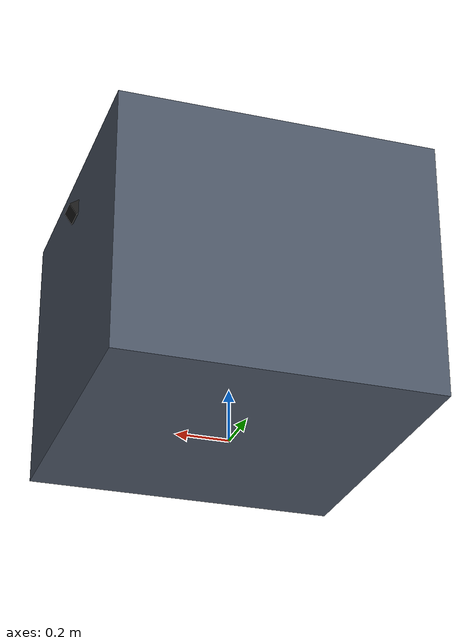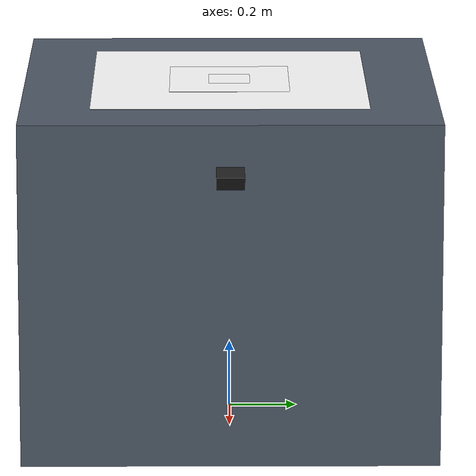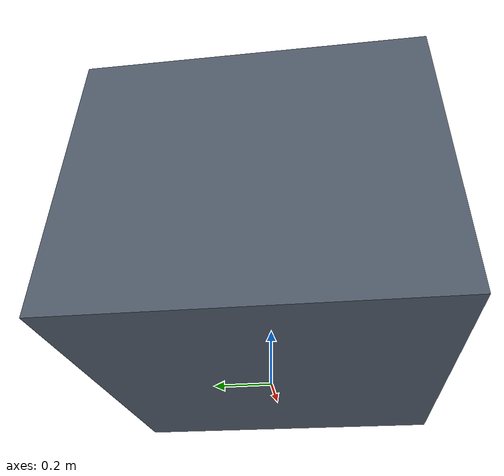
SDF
<?xml version="1.0"?>
<sdf version="1.9">
  <model name="aruco_platform">
    <static>false</static>
    <link name="link">
      <gravity>false</gravity>
      <inertial>
        <mass>100.0</mass>
        <inertia>
          <ixx>20.0</ixx><iyy>20.0</iyy><izz>24.0</izz>
          <ixy>0</ixy><ixz>0</ixz><iyz>0</iyz>
        </inertia>
      </inertial>

      <collision name="body_col">
        <pose>0 0 0.5 0 0 0</pose>
        <geometry><box><size>1.2 1.2 1.0</size></box></geometry>
        <surface>
          <friction>
            <ode><mu>1.0</mu><mu2>1.0</mu2></ode>
          </friction>
        </surface>
      </collision>
      <visual name="body_vis">
        <pose>0 0 0.5 0 0 0</pose>
        <geometry><box><size>1.2 1.2 1.0</size></box></geometry>
        <material>
          <ambient>0.25 0.28 0.32 1</ambient>
          <diffuse>0.30 0.34 0.40 1</diffuse>
          <specular>0.1 0.1 0.1 1</specular>
        </material>
      </visual>

      <visual name="marker_vis_large">
        <pose>0 0 1.001 0 0 0</pose>
        <geometry>
          <plane>
            <normal>0 0 1</normal>
            <size>0.8 0.8</size>
          </plane>
        </geometry>
        <material>
          <ambient>1 1 1 1</ambient>
          <diffuse>1 1 1 1</diffuse>
          <specular>0 0 0 1</specular>
          <pbr>
            <metal>
              <albedo_map>model://aruco_platform/materials/textures/aruco_0.png</albedo_map>
              <metalness>0.0</metalness>
              <roughness>1.0</roughness>
            </metal>
          </pbr>
        </material>
      </visual>
      <visual name="marker_vis_medium">
        <pose>0 0 1.002 0 0 0</pose>
        <geometry>
          <plane>
            <normal>0 0 1</normal>
            <size>0.35 0.35</size>
          </plane>
        </geometry>
        <material>
          <ambient>1 1 1 1</ambient>
          <diffuse>1 1 1 1</diffuse>
          <specular>0 0 0 1</specular>
          <pbr>
            <metal>
              <albedo_map>model://aruco_platform/materials/textures/aruco_1.png</albedo_map>
              <metalness>0.0</metalness>
              <roughness>1.0</roughness>
            </metal>
          </pbr>
        </material>
      </visual>
      <visual name="marker_vis_small">
        <pose>0 0 1.003 0 0 0</pose>
        <geometry>
          <plane>
            <normal>0 0 1</normal>
            <size>0.12 0.12</size>
          </plane>
        </geometry>
        <material>
          <ambient>1 1 1 1</ambient>
          <diffuse>1 1 1 1</diffuse>
          <specular>0 0 0 1</specular>
          <pbr>
            <metal>
              <albedo_map>model://aruco_platform/materials/textures/aruco_2.png</albedo_map>
              <metalness>0.0</metalness>
              <roughness>1.0</roughness>
            </metal>
          </pbr>
        </material>
      </visual>

      <!-- Forward-looking camera for TRACK-LINE following.                -->
      <!-- Mounted at the FRONT-TOP of the box (box front face = x+0.6,    -->
      <!-- top = z+1.0), pitched ~35 deg down so the optical +X axis looks -->
      <!-- forward-and-down at the white guide line a couple metres ahead. -->
      <!-- track_follower_node thresholds the white line in this image and -->
      <!-- steers the platform (cmd_vel) to keep it centred. The camera    -->
      <!-- rides with the box (same link), so it always points along the   -->
      <!-- platform's forward (+x body) direction as it turns. -->
      <visual name="front_cam_vis">
        <pose>0.60 0 0.85 0 0.61 0</pose>
        <geometry><box><size>0.05 0.08 0.05</size></box></geometry>
        <material>
          <ambient>0.05 0.05 0.05 1</ambient>
          <diffuse>0.1 0.1 0.1 1</diffuse>
        </material>
      </visual>
      <sensor name="front_camera" type="camera">
        <gz_frame_id>aruco_platform/front_camera</gz_frame_id>
        <pose>0.60 0 0.85 0 0.61 0</pose>
        <always_on>1</always_on>
        <update_rate>30</update_rate>
        <visualize>true</visualize>
        <topic>front_camera/image</topic>
        <camera>
          <!-- Wide FOV (~92 deg) so BOTH lane lines (2 m apart) stay in frame
               even at the near rows where the lane spans widest in the image. -->
          <horizontal_fov>1.60</horizontal_fov>
          <image>
            <width>640</width>
            <height>480</height>
            <format>R8G8B8</format>
          </image>
          <clip>
            <near>0.05</near>
            <far>1000</far>
          </clip>
          <optical_frame_id>aruco_platform/front_camera_optical</optical_frame_id>
        </camera>
      </sensor>
    </link>

    <plugin filename="gz-sim-detachable-joint-system"
            name="gz::sim::systems::DetachableJoint">
      <parent_link>link</parent_link>
      <child_model>iris_with_standoffs</child_model>
      <child_link>base_link</child_link>
      <topic>/aruco_platform/detach</topic>
      <suppress_initial_detach>true</suppress_initial_detach>
    </plugin>

    <plugin filename="gz-sim-velocity-control-system"
            name="gz::sim::systems::VelocityControl">
      <topic>/model/aruco_platform/cmd_vel</topic>
    </plugin>
  </model>
</sdf>
